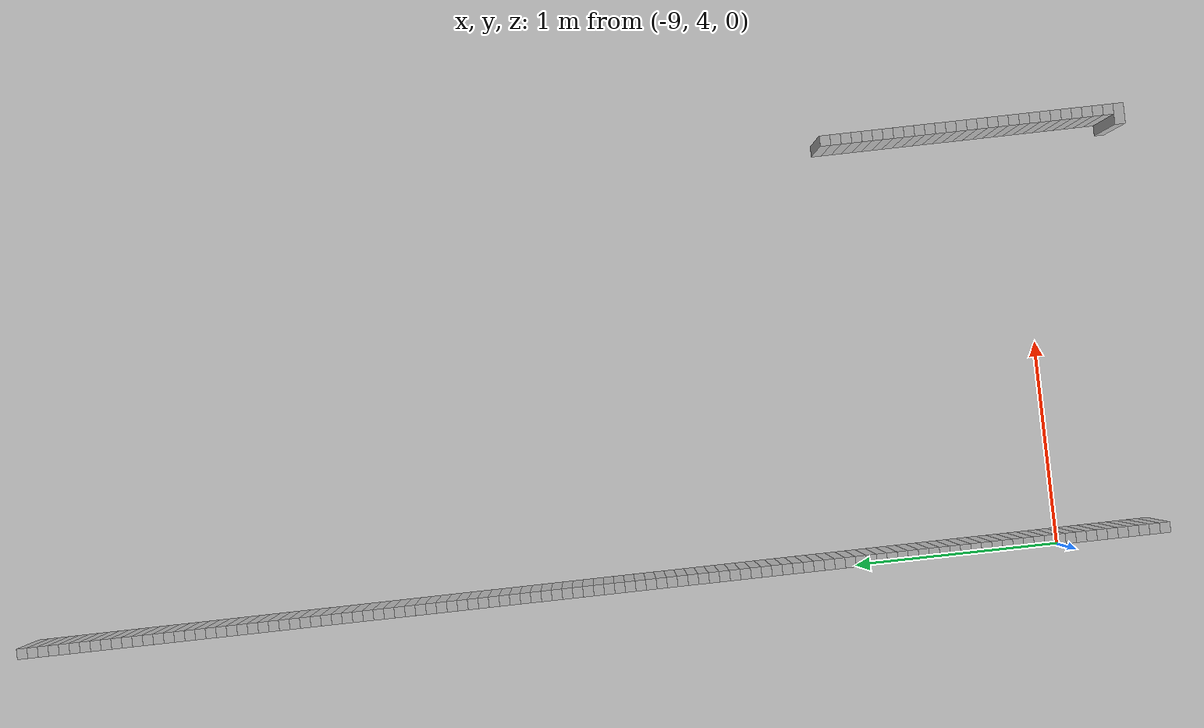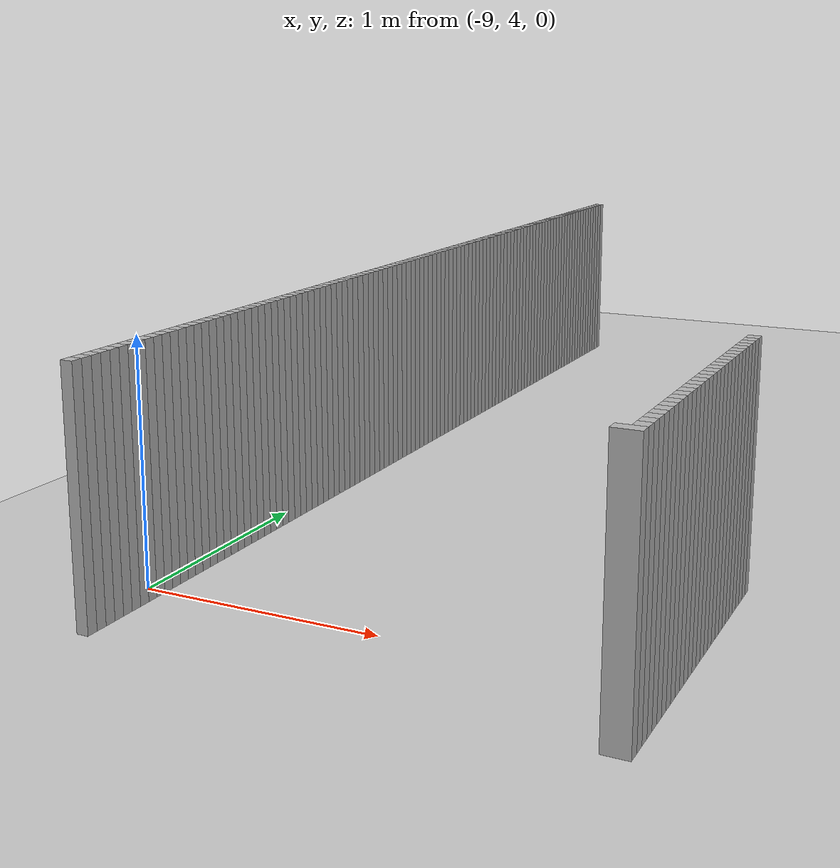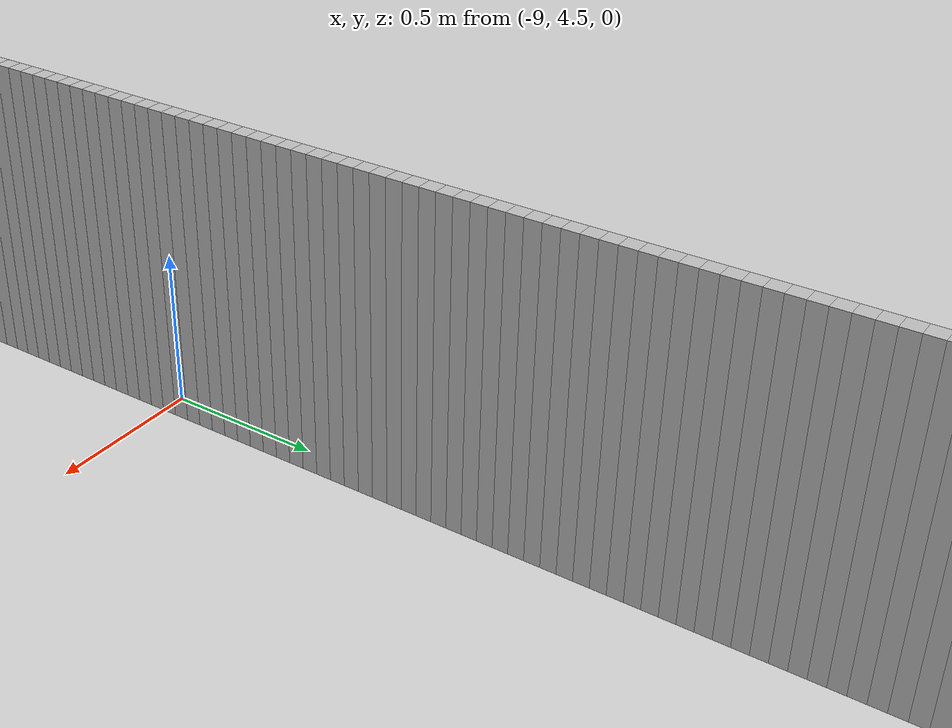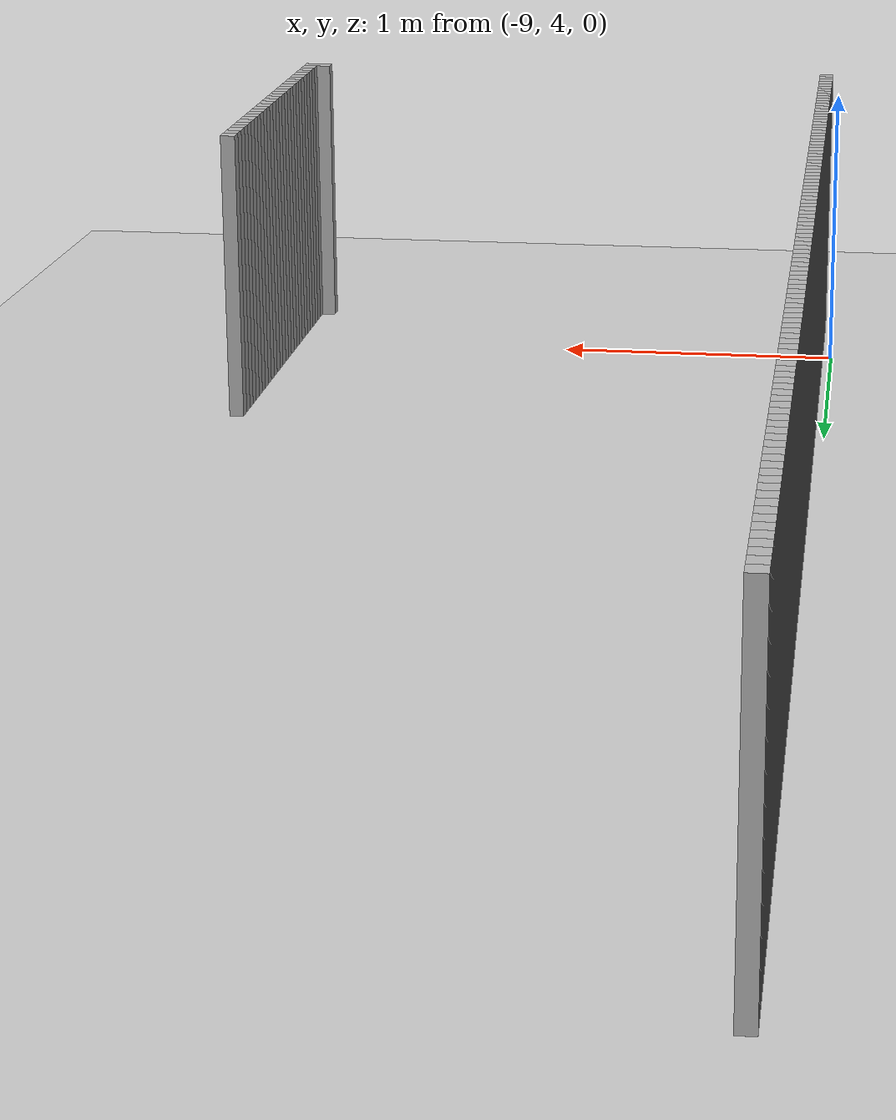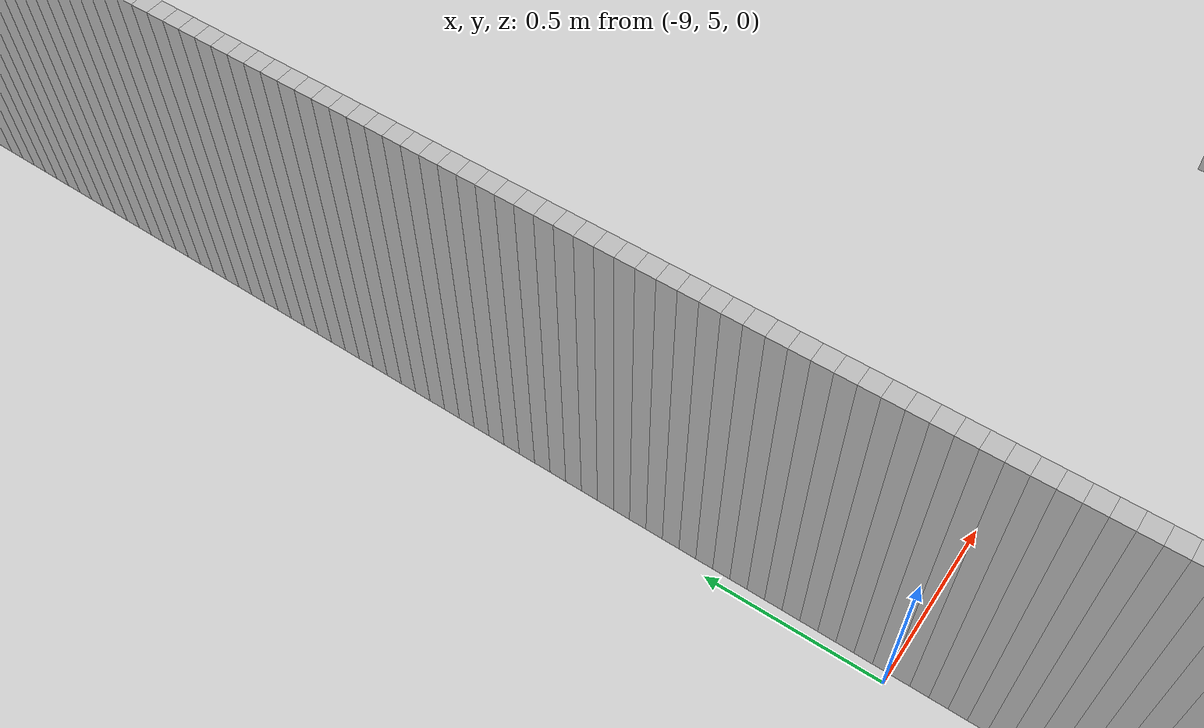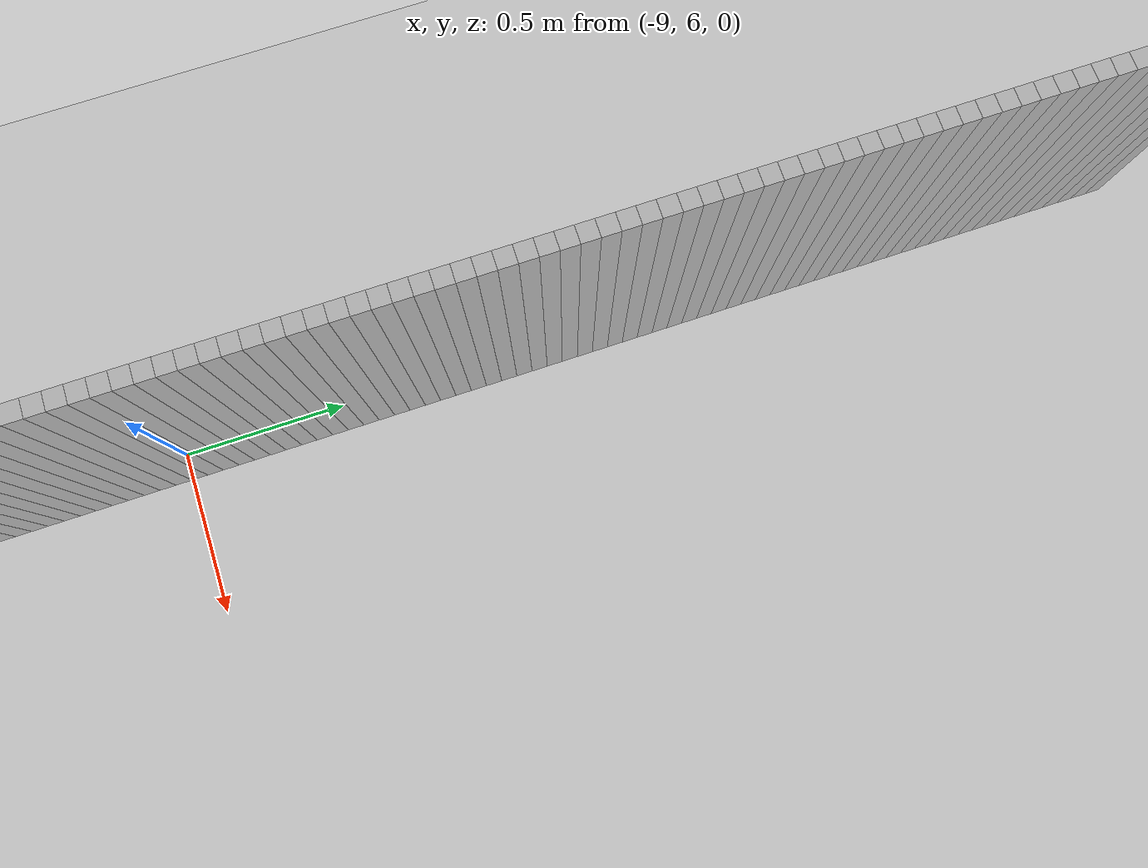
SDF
<sdf version="1.6">
 <world name="udh1_world">
  <include><uri>model://ground_plane</uri></include>
  <include><uri>model://sun</uri></include>
  <model name="wall_7">
   <static>true</static>
   <pose>-8.945 9.020000000000001 0.5 0 0 0</pose>
   <link name="link">
    <collision name="col"><geometry><box><size>0.05 0.05 1</size></box></geometry></collision>
    <visual name="vis"><geometry><box><size>0.05 0.05 1</size></box></geometry></visual>
   </link>
  </model>
  <model name="wall_42">
   <static>true</static>
   <pose>-8.945 8.97 0.5 0 0 0</pose>
   <link name="link">
    <collision name="col"><geometry><box><size>0.05 0.05 1</size></box></geometry></collision>
    <visual name="vis"><geometry><box><size>0.05 0.05 1</size></box></geometry></visual>
   </link>
  </model>
  <model name="wall_46">
   <static>true</static>
   <pose>-8.945 8.92 0.5 0 0 0</pose>
   <link name="link">
    <collision name="col"><geometry><box><size>0.05 0.05 1</size></box></geometry></collision>
    <visual name="vis"><geometry><box><size>0.05 0.05 1</size></box></geometry></visual>
   </link>
  </model>
  <model name="wall_50">
   <static>true</static>
   <pose>-8.945 8.87 0.5 0 0 0</pose>
   <link name="link">
    <collision name="col"><geometry><box><size>0.05 0.05 1</size></box></geometry></collision>
    <visual name="vis"><geometry><box><size>0.05 0.05 1</size></box></geometry></visual>
   </link>
  </model>
  <model name="wall_54">
   <static>true</static>
   <pose>-8.945 8.819999999999999 0.5 0 0 0</pose>
   <link name="link">
    <collision name="col"><geometry><box><size>0.05 0.05 1</size></box></geometry></collision>
    <visual name="vis"><geometry><box><size>0.05 0.05 1</size></box></geometry></visual>
   </link>
  </model>
  <model name="wall_58">
   <static>true</static>
   <pose>-8.945 8.770000000000001 0.5 0 0 0</pose>
   <link name="link">
    <collision name="col"><geometry><box><size>0.05 0.05 1</size></box></geometry></collision>
    <visual name="vis"><geometry><box><size>0.05 0.05 1</size></box></geometry></visual>
   </link>
  </model>
  <model name="wall_62">
   <static>true</static>
   <pose>-8.945 8.72 0.5 0 0 0</pose>
   <link name="link">
    <collision name="col"><geometry><box><size>0.05 0.05 1</size></box></geometry></collision>
    <visual name="vis"><geometry><box><size>0.05 0.05 1</size></box></geometry></visual>
   </link>
  </model>
  <model name="wall_66">
   <static>true</static>
   <pose>-8.945 8.67 0.5 0 0 0</pose>
   <link name="link">
    <collision name="col"><geometry><box><size>0.05 0.05 1</size></box></geometry></collision>
    <visual name="vis"><geometry><box><size>0.05 0.05 1</size></box></geometry></visual>
   </link>
  </model>
  <model name="wall_70">
   <static>true</static>
   <pose>-8.945 8.62 0.5 0 0 0</pose>
   <link name="link">
    <collision name="col"><geometry><box><size>0.05 0.05 1</size></box></geometry></collision>
    <visual name="vis"><geometry><box><size>0.05 0.05 1</size></box></geometry></visual>
   </link>
  </model>
  <model name="wall_74">
   <static>true</static>
   <pose>-8.945 8.569999999999999 0.5 0 0 0</pose>
   <link name="link">
    <collision name="col"><geometry><box><size>0.05 0.05 1</size></box></geometry></collision>
    <visual name="vis"><geometry><box><size>0.05 0.05 1</size></box></geometry></visual>
   </link>
  </model>
  <model name="wall_78">
   <static>true</static>
   <pose>-8.945 8.520000000000001 0.5 0 0 0</pose>
   <link name="link">
    <collision name="col"><geometry><box><size>0.05 0.05 1</size></box></geometry></collision>
    <visual name="vis"><geometry><box><size>0.05 0.05 1</size></box></geometry></visual>
   </link>
  </model>
  <model name="wall_82">
   <static>true</static>
   <pose>-8.945 8.47 0.5 0 0 0</pose>
   <link name="link">
    <collision name="col"><geometry><box><size>0.05 0.05 1</size></box></geometry></collision>
    <visual name="vis"><geometry><box><size>0.05 0.05 1</size></box></geometry></visual>
   </link>
  </model>
  <model name="wall_86">
   <static>true</static>
   <pose>-8.945 8.42 0.5 0 0 0</pose>
   <link name="link">
    <collision name="col"><geometry><box><size>0.05 0.05 1</size></box></geometry></collision>
    <visual name="vis"><geometry><box><size>0.05 0.05 1</size></box></geometry></visual>
   </link>
  </model>
  <model name="wall_90">
   <static>true</static>
   <pose>-8.945 8.37 0.5 0 0 0</pose>
   <link name="link">
    <collision name="col"><geometry><box><size>0.05 0.05 1</size></box></geometry></collision>
    <visual name="vis"><geometry><box><size>0.05 0.05 1</size></box></geometry></visual>
   </link>
  </model>
  <model name="wall_95">
   <static>true</static>
   <pose>-8.945 8.319999999999999 0.5 0 0 0</pose>
   <link name="link">
    <collision name="col"><geometry><box><size>0.05 0.05 1</size></box></geometry></collision>
    <visual name="vis"><geometry><box><size>0.05 0.05 1</size></box></geometry></visual>
   </link>
  </model>
  <model name="wall_99">
   <static>true</static>
   <pose>-8.945 8.270000000000001 0.5 0 0 0</pose>
   <link name="link">
    <collision name="col"><geometry><box><size>0.05 0.05 1</size></box></geometry></collision>
    <visual name="vis"><geometry><box><size>0.05 0.05 1</size></box></geometry></visual>
   </link>
  </model>
  <model name="wall_103">
   <static>true</static>
   <pose>-8.945 8.22 0.5 0 0 0</pose>
   <link name="link">
    <collision name="col"><geometry><box><size>0.05 0.05 1</size></box></geometry></collision>
    <visual name="vis"><geometry><box><size>0.05 0.05 1</size></box></geometry></visual>
   </link>
  </model>
  <model name="wall_107">
   <static>true</static>
   <pose>-8.945 8.17 0.5 0 0 0</pose>
   <link name="link">
    <collision name="col"><geometry><box><size>0.05 0.05 1</size></box></geometry></collision>
    <visual name="vis"><geometry><box><size>0.05 0.05 1</size></box></geometry></visual>
   </link>
  </model>
  <model name="wall_112">
   <static>true</static>
   <pose>-8.945 8.12 0.5 0 0 0</pose>
   <link name="link">
    <collision name="col"><geometry><box><size>0.05 0.05 1</size></box></geometry></collision>
    <visual name="vis"><geometry><box><size>0.05 0.05 1</size></box></geometry></visual>
   </link>
  </model>
  <model name="wall_116">
   <static>true</static>
   <pose>-8.945 8.069999999999999 0.5 0 0 0</pose>
   <link name="link">
    <collision name="col"><geometry><box><size>0.05 0.05 1</size></box></geometry></collision>
    <visual name="vis"><geometry><box><size>0.05 0.05 1</size></box></geometry></visual>
   </link>
  </model>
  <model name="wall_120">
   <static>true</static>
   <pose>-8.945 8.020000000000001 0.5 0 0 0</pose>
   <link name="link">
    <collision name="col"><geometry><box><size>0.05 0.05 1</size></box></geometry></collision>
    <visual name="vis"><geometry><box><size>0.05 0.05 1</size></box></geometry></visual>
   </link>
  </model>
  <model name="wall_124">
   <static>true</static>
   <pose>-8.945 7.970000000000001 0.5 0 0 0</pose>
   <link name="link">
    <collision name="col"><geometry><box><size>0.05 0.05 1</size></box></geometry></collision>
    <visual name="vis"><geometry><box><size>0.05 0.05 1</size></box></geometry></visual>
   </link>
  </model>
  <model name="wall_128">
   <static>true</static>
   <pose>-8.945 7.92 0.5 0 0 0</pose>
   <link name="link">
    <collision name="col"><geometry><box><size>0.05 0.05 1</size></box></geometry></collision>
    <visual name="vis"><geometry><box><size>0.05 0.05 1</size></box></geometry></visual>
   </link>
  </model>
  <model name="wall_132">
   <static>true</static>
   <pose>-8.945 7.869999999999999 0.5 0 0 0</pose>
   <link name="link">
    <collision name="col"><geometry><box><size>0.05 0.05 1</size></box></geometry></collision>
    <visual name="vis"><geometry><box><size>0.05 0.05 1</size></box></geometry></visual>
   </link>
  </model>
  <model name="wall_137">
   <static>true</static>
   <pose>-8.945 7.8199999999999985 0.5 0 0 0</pose>
   <link name="link">
    <collision name="col"><geometry><box><size>0.05 0.05 1</size></box></geometry></collision>
    <visual name="vis"><geometry><box><size>0.05 0.05 1</size></box></geometry></visual>
   </link>
  </model>
  <model name="wall_141">
   <static>true</static>
   <pose>-8.945 7.770000000000001 0.5 0 0 0</pose>
   <link name="link">
    <collision name="col"><geometry><box><size>0.05 0.05 1</size></box></geometry></collision>
    <visual name="vis"><geometry><box><size>0.05 0.05 1</size></box></geometry></visual>
   </link>
  </model>
  <model name="wall_145">
   <static>true</static>
   <pose>-8.945 7.720000000000001 0.5 0 0 0</pose>
   <link name="link">
    <collision name="col"><geometry><box><size>0.05 0.05 1</size></box></geometry></collision>
    <visual name="vis"><geometry><box><size>0.05 0.05 1</size></box></geometry></visual>
   </link>
  </model>
  <model name="wall_150">
   <static>true</static>
   <pose>-8.945 7.67 0.5 0 0 0</pose>
   <link name="link">
    <collision name="col"><geometry><box><size>0.05 0.05 1</size></box></geometry></collision>
    <visual name="vis"><geometry><box><size>0.05 0.05 1</size></box></geometry></visual>
   </link>
  </model>
  <model name="wall_154">
   <static>true</static>
   <pose>-8.945 7.619999999999999 0.5 0 0 0</pose>
   <link name="link">
    <collision name="col"><geometry><box><size>0.05 0.05 1</size></box></geometry></collision>
    <visual name="vis"><geometry><box><size>0.05 0.05 1</size></box></geometry></visual>
   </link>
  </model>
  <model name="wall_158">
   <static>true</static>
   <pose>-8.945 7.5699999999999985 0.5 0 0 0</pose>
   <link name="link">
    <collision name="col"><geometry><box><size>0.05 0.05 1</size></box></geometry></collision>
    <visual name="vis"><geometry><box><size>0.05 0.05 1</size></box></geometry></visual>
   </link>
  </model>
  <model name="wall_162">
   <static>true</static>
   <pose>-8.945 7.520000000000001 0.5 0 0 0</pose>
   <link name="link">
    <collision name="col"><geometry><box><size>0.05 0.05 1</size></box></geometry></collision>
    <visual name="vis"><geometry><box><size>0.05 0.05 1</size></box></geometry></visual>
   </link>
  </model>
  <model name="wall_166">
   <static>true</static>
   <pose>-8.945 7.470000000000001 0.5 0 0 0</pose>
   <link name="link">
    <collision name="col"><geometry><box><size>0.05 0.05 1</size></box></geometry></collision>
    <visual name="vis"><geometry><box><size>0.05 0.05 1</size></box></geometry></visual>
   </link>
  </model>
  <model name="wall_171">
   <static>true</static>
   <pose>-8.945 7.42 0.5 0 0 0</pose>
   <link name="link">
    <collision name="col"><geometry><box><size>0.05 0.05 1</size></box></geometry></collision>
    <visual name="vis"><geometry><box><size>0.05 0.05 1</size></box></geometry></visual>
   </link>
  </model>
  <model name="wall_175">
   <static>true</static>
   <pose>-8.945 7.369999999999999 0.5 0 0 0</pose>
   <link name="link">
    <collision name="col"><geometry><box><size>0.05 0.05 1</size></box></geometry></collision>
    <visual name="vis"><geometry><box><size>0.05 0.05 1</size></box></geometry></visual>
   </link>
  </model>
  <model name="wall_179">
   <static>true</static>
   <pose>-8.945 7.3199999999999985 0.5 0 0 0</pose>
   <link name="link">
    <collision name="col"><geometry><box><size>0.05 0.05 1</size></box></geometry></collision>
    <visual name="vis"><geometry><box><size>0.05 0.05 1</size></box></geometry></visual>
   </link>
  </model>
  <model name="wall_183">
   <static>true</static>
   <pose>-8.945 7.270000000000001 0.5 0 0 0</pose>
   <link name="link">
    <collision name="col"><geometry><box><size>0.05 0.05 1</size></box></geometry></collision>
    <visual name="vis"><geometry><box><size>0.05 0.05 1</size></box></geometry></visual>
   </link>
  </model>
  <model name="wall_187">
   <static>true</static>
   <pose>-8.945 7.220000000000001 0.5 0 0 0</pose>
   <link name="link">
    <collision name="col"><geometry><box><size>0.05 0.05 1</size></box></geometry></collision>
    <visual name="vis"><geometry><box><size>0.05 0.05 1</size></box></geometry></visual>
   </link>
  </model>
  <model name="wall_191">
   <static>true</static>
   <pose>-8.945 7.17 0.5 0 0 0</pose>
   <link name="link">
    <collision name="col"><geometry><box><size>0.05 0.05 1</size></box></geometry></collision>
    <visual name="vis"><geometry><box><size>0.05 0.05 1</size></box></geometry></visual>
   </link>
  </model>
  <model name="wall_195">
   <static>true</static>
   <pose>-8.945 7.119999999999999 0.5 0 0 0</pose>
   <link name="link">
    <collision name="col"><geometry><box><size>0.05 0.05 1</size></box></geometry></collision>
    <visual name="vis"><geometry><box><size>0.05 0.05 1</size></box></geometry></visual>
   </link>
  </model>
  <model name="wall_200">
   <static>true</static>
   <pose>-8.945 7.0699999999999985 0.5 0 0 0</pose>
   <link name="link">
    <collision name="col"><geometry><box><size>0.05 0.05 1</size></box></geometry></collision>
    <visual name="vis"><geometry><box><size>0.05 0.05 1</size></box></geometry></visual>
   </link>
  </model>
  <model name="wall_207">
   <static>true</static>
   <pose>-8.945 7.020000000000001 0.5 0 0 0</pose>
   <link name="link">
    <collision name="col"><geometry><box><size>0.05 0.05 1</size></box></geometry></collision>
    <visual name="vis"><geometry><box><size>0.05 0.05 1</size></box></geometry></visual>
   </link>
  </model>
  <model name="wall_215">
   <static>true</static>
   <pose>-8.945 6.970000000000001 0.5 0 0 0</pose>
   <link name="link">
    <collision name="col"><geometry><box><size>0.05 0.05 1</size></box></geometry></collision>
    <visual name="vis"><geometry><box><size>0.05 0.05 1</size></box></geometry></visual>
   </link>
  </model>
  <model name="wall_224">
   <static>true</static>
   <pose>-8.945 6.92 0.5 0 0 0</pose>
   <link name="link">
    <collision name="col"><geometry><box><size>0.05 0.05 1</size></box></geometry></collision>
    <visual name="vis"><geometry><box><size>0.05 0.05 1</size></box></geometry></visual>
   </link>
  </model>
  <model name="wall_232">
   <static>true</static>
   <pose>-8.945 6.869999999999999 0.5 0 0 0</pose>
   <link name="link">
    <collision name="col"><geometry><box><size>0.05 0.05 1</size></box></geometry></collision>
    <visual name="vis"><geometry><box><size>0.05 0.05 1</size></box></geometry></visual>
   </link>
  </model>
  <model name="wall_240">
   <static>true</static>
   <pose>-8.945 6.82 0.5 0 0 0</pose>
   <link name="link">
    <collision name="col"><geometry><box><size>0.05 0.05 1</size></box></geometry></collision>
    <visual name="vis"><geometry><box><size>0.05 0.05 1</size></box></geometry></visual>
   </link>
  </model>
  <model name="wall_248">
   <static>true</static>
   <pose>-8.945 6.77 0.5 0 0 0</pose>
   <link name="link">
    <collision name="col"><geometry><box><size>0.05 0.05 1</size></box></geometry></collision>
    <visual name="vis"><geometry><box><size>0.05 0.05 1</size></box></geometry></visual>
   </link>
  </model>
  <model name="wall_256">
   <static>true</static>
   <pose>-8.945 6.720000000000001 0.5 0 0 0</pose>
   <link name="link">
    <collision name="col"><geometry><box><size>0.05 0.05 1</size></box></geometry></collision>
    <visual name="vis"><geometry><box><size>0.05 0.05 1</size></box></geometry></visual>
   </link>
  </model>
  <model name="wall_264">
   <static>true</static>
   <pose>-8.945 6.67 0.5 0 0 0</pose>
   <link name="link">
    <collision name="col"><geometry><box><size>0.05 0.05 1</size></box></geometry></collision>
    <visual name="vis"><geometry><box><size>0.05 0.05 1</size></box></geometry></visual>
   </link>
  </model>
  <model name="wall_272">
   <static>true</static>
   <pose>-8.945 6.619999999999999 0.5 0 0 0</pose>
   <link name="link">
    <collision name="col"><geometry><box><size>0.05 0.05 1</size></box></geometry></collision>
    <visual name="vis"><geometry><box><size>0.05 0.05 1</size></box></geometry></visual>
   </link>
  </model>
  <model name="wall_285">
   <static>true</static>
   <pose>-8.945 6.57 0.5 0 0 0</pose>
   <link name="link">
    <collision name="col"><geometry><box><size>0.05 0.05 1</size></box></geometry></collision>
    <visual name="vis"><geometry><box><size>0.05 0.05 1</size></box></geometry></visual>
   </link>
  </model>
  <model name="wall_293">
   <static>true</static>
   <pose>-8.945 6.52 0.5 0 0 0</pose>
   <link name="link">
    <collision name="col"><geometry><box><size>0.05 0.05 1</size></box></geometry></collision>
    <visual name="vis"><geometry><box><size>0.05 0.05 1</size></box></geometry></visual>
   </link>
  </model>
  <model name="wall_299">
   <static>true</static>
   <pose>-8.945 6.470000000000001 0.5 0 0 0</pose>
   <link name="link">
    <collision name="col"><geometry><box><size>0.05 0.05 1</size></box></geometry></collision>
    <visual name="vis"><geometry><box><size>0.05 0.05 1</size></box></geometry></visual>
   </link>
  </model>
  <model name="wall_305">
   <static>true</static>
   <pose>-8.945 6.42 0.5 0 0 0</pose>
   <link name="link">
    <collision name="col"><geometry><box><size>0.05 0.05 1</size></box></geometry></collision>
    <visual name="vis"><geometry><box><size>0.05 0.05 1</size></box></geometry></visual>
   </link>
  </model>
  <model name="wall_311">
   <static>true</static>
   <pose>-8.945 6.369999999999999 0.5 0 0 0</pose>
   <link name="link">
    <collision name="col"><geometry><box><size>0.05 0.05 1</size></box></geometry></collision>
    <visual name="vis"><geometry><box><size>0.05 0.05 1</size></box></geometry></visual>
   </link>
  </model>
  <model name="wall_317">
   <static>true</static>
   <pose>-8.945 6.32 0.5 0 0 0</pose>
   <link name="link">
    <collision name="col"><geometry><box><size>0.05 0.05 1</size></box></geometry></collision>
    <visual name="vis"><geometry><box><size>0.05 0.05 1</size></box></geometry></visual>
   </link>
  </model>
  <model name="wall_323">
   <static>true</static>
   <pose>-8.945 6.27 0.5 0 0 0</pose>
   <link name="link">
    <collision name="col"><geometry><box><size>0.05 0.05 1</size></box></geometry></collision>
    <visual name="vis"><geometry><box><size>0.05 0.05 1</size></box></geometry></visual>
   </link>
  </model>
  <model name="wall_329">
   <static>true</static>
   <pose>-8.945 6.220000000000001 0.5 0 0 0</pose>
   <link name="link">
    <collision name="col"><geometry><box><size>0.05 0.05 1</size></box></geometry></collision>
    <visual name="vis"><geometry><box><size>0.05 0.05 1</size></box></geometry></visual>
   </link>
  </model>
  <model name="wall_335">
   <static>true</static>
   <pose>-8.945 6.17 0.5 0 0 0</pose>
   <link name="link">
    <collision name="col"><geometry><box><size>0.05 0.05 1</size></box></geometry></collision>
    <visual name="vis"><geometry><box><size>0.05 0.05 1</size></box></geometry></visual>
   </link>
  </model>
  <model name="wall_341">
   <static>true</static>
   <pose>-8.945 6.119999999999999 0.5 0 0 0</pose>
   <link name="link">
    <collision name="col"><geometry><box><size>0.05 0.05 1</size></box></geometry></collision>
    <visual name="vis"><geometry><box><size>0.05 0.05 1</size></box></geometry></visual>
   </link>
  </model>
  <model name="wall_355">
   <static>true</static>
   <pose>-8.945 6.07 0.5 0 0 0</pose>
   <link name="link">
    <collision name="col"><geometry><box><size>0.05 0.05 1</size></box></geometry></collision>
    <visual name="vis"><geometry><box><size>0.05 0.05 1</size></box></geometry></visual>
   </link>
  </model>
  <model name="wall_361">
   <static>true</static>
   <pose>-8.945 6.02 0.5 0 0 0</pose>
   <link name="link">
    <collision name="col"><geometry><box><size>0.05 0.05 1</size></box></geometry></collision>
    <visual name="vis"><geometry><box><size>0.05 0.05 1</size></box></geometry></visual>
   </link>
  </model>
  <model name="wall_367">
   <static>true</static>
   <pose>-8.945 5.970000000000001 0.5 0 0 0</pose>
   <link name="link">
    <collision name="col"><geometry><box><size>0.05 0.05 1</size></box></geometry></collision>
    <visual name="vis"><geometry><box><size>0.05 0.05 1</size></box></geometry></visual>
   </link>
  </model>
  <model name="wall_373">
   <static>true</static>
   <pose>-8.945 5.92 0.5 0 0 0</pose>
   <link name="link">
    <collision name="col"><geometry><box><size>0.05 0.05 1</size></box></geometry></collision>
    <visual name="vis"><geometry><box><size>0.05 0.05 1</size></box></geometry></visual>
   </link>
  </model>
  <model name="wall_379">
   <static>true</static>
   <pose>-8.945 5.869999999999999 0.5 0 0 0</pose>
   <link name="link">
    <collision name="col"><geometry><box><size>0.05 0.05 1</size></box></geometry></collision>
    <visual name="vis"><geometry><box><size>0.05 0.05 1</size></box></geometry></visual>
   </link>
  </model>
  <model name="wall_385">
   <static>true</static>
   <pose>-8.945 5.82 0.5 0 0 0</pose>
   <link name="link">
    <collision name="col"><geometry><box><size>0.05 0.05 1</size></box></geometry></collision>
    <visual name="vis"><geometry><box><size>0.05 0.05 1</size></box></geometry></visual>
   </link>
  </model>
  <model name="wall_391">
   <static>true</static>
   <pose>-8.945 5.77 0.5 0 0 0</pose>
   <link name="link">
    <collision name="col"><geometry><box><size>0.05 0.05 1</size></box></geometry></collision>
    <visual name="vis"><geometry><box><size>0.05 0.05 1</size></box></geometry></visual>
   </link>
  </model>
  <model name="wall_397">
   <static>true</static>
   <pose>-8.945 5.720000000000001 0.5 0 0 0</pose>
   <link name="link">
    <collision name="col"><geometry><box><size>0.05 0.05 1</size></box></geometry></collision>
    <visual name="vis"><geometry><box><size>0.05 0.05 1</size></box></geometry></visual>
   </link>
  </model>
  <model name="wall_403">
   <static>true</static>
   <pose>-8.945 5.67 0.5 0 0 0</pose>
   <link name="link">
    <collision name="col"><geometry><box><size>0.05 0.05 1</size></box></geometry></collision>
    <visual name="vis"><geometry><box><size>0.05 0.05 1</size></box></geometry></visual>
   </link>
  </model>
  <model name="wall_409">
   <static>true</static>
   <pose>-8.945 5.619999999999999 0.5 0 0 0</pose>
   <link name="link">
    <collision name="col"><geometry><box><size>0.05 0.05 1</size></box></geometry></collision>
    <visual name="vis"><geometry><box><size>0.05 0.05 1</size></box></geometry></visual>
   </link>
  </model>
  <model name="wall_415">
   <static>true</static>
   <pose>-8.945 5.57 0.5 0 0 0</pose>
   <link name="link">
    <collision name="col"><geometry><box><size>0.05 0.05 1</size></box></geometry></collision>
    <visual name="vis"><geometry><box><size>0.05 0.05 1</size></box></geometry></visual>
   </link>
  </model>
  <model name="wall_422">
   <static>true</static>
   <pose>-8.945 5.52 0.5 0 0 0</pose>
   <link name="link">
    <collision name="col"><geometry><box><size>0.05 0.05 1</size></box></geometry></collision>
    <visual name="vis"><geometry><box><size>0.05 0.05 1</size></box></geometry></visual>
   </link>
  </model>
  <model name="wall_431">
   <static>true</static>
   <pose>-8.945 5.470000000000001 0.5 0 0 0</pose>
   <link name="link">
    <collision name="col"><geometry><box><size>0.05 0.05 1</size></box></geometry></collision>
    <visual name="vis"><geometry><box><size>0.05 0.05 1</size></box></geometry></visual>
   </link>
  </model>
  <model name="wall_440">
   <static>true</static>
   <pose>-8.945 5.42 0.5 0 0 0</pose>
   <link name="link">
    <collision name="col"><geometry><box><size>0.05 0.05 1</size></box></geometry></collision>
    <visual name="vis"><geometry><box><size>0.05 0.05 1</size></box></geometry></visual>
   </link>
  </model>
  <model name="wall_449">
   <static>true</static>
   <pose>-8.945 5.369999999999999 0.5 0 0 0</pose>
   <link name="link">
    <collision name="col"><geometry><box><size>0.05 0.05 1</size></box></geometry></collision>
    <visual name="vis"><geometry><box><size>0.05 0.05 1</size></box></geometry></visual>
   </link>
  </model>
  <model name="wall_458">
   <static>true</static>
   <pose>-8.945 5.32 0.5 0 0 0</pose>
   <link name="link">
    <collision name="col"><geometry><box><size>0.05 0.05 1</size></box></geometry></collision>
    <visual name="vis"><geometry><box><size>0.05 0.05 1</size></box></geometry></visual>
   </link>
  </model>
  <model name="wall_467">
   <static>true</static>
   <pose>-8.945 5.27 0.5 0 0 0</pose>
   <link name="link">
    <collision name="col"><geometry><box><size>0.05 0.05 1</size></box></geometry></collision>
    <visual name="vis"><geometry><box><size>0.05 0.05 1</size></box></geometry></visual>
   </link>
  </model>
  <model name="wall_476">
   <static>true</static>
   <pose>-8.945 5.220000000000001 0.5 0 0 0</pose>
   <link name="link">
    <collision name="col"><geometry><box><size>0.05 0.05 1</size></box></geometry></collision>
    <visual name="vis"><geometry><box><size>0.05 0.05 1</size></box></geometry></visual>
   </link>
  </model>
  <model name="wall_485">
   <static>true</static>
   <pose>-8.945 5.17 0.5 0 0 0</pose>
   <link name="link">
    <collision name="col"><geometry><box><size>0.05 0.05 1</size></box></geometry></collision>
    <visual name="vis"><geometry><box><size>0.05 0.05 1</size></box></geometry></visual>
   </link>
  </model>
  <model name="wall_494">
   <static>true</static>
   <pose>-8.945 5.119999999999999 0.5 0 0 0</pose>
   <link name="link">
    <collision name="col"><geometry><box><size>0.05 0.05 1</size></box></geometry></collision>
    <visual name="vis"><geometry><box><size>0.05 0.05 1</size></box></geometry></visual>
   </link>
  </model>
  <model name="wall_503">
   <static>true</static>
   <pose>-8.945 5.07 0.5 0 0 0</pose>
   <link name="link">
    <collision name="col"><geometry><box><size>0.05 0.05 1</size></box></geometry></collision>
    <visual name="vis"><geometry><box><size>0.05 0.05 1</size></box></geometry></visual>
   </link>
  </model>
  <model name="wall_512">
   <static>true</static>
   <pose>-8.945 5.02 0.5 0 0 0</pose>
   <link name="link">
    <collision name="col"><geometry><box><size>0.05 0.05 1</size></box></geometry></collision>
    <visual name="vis"><geometry><box><size>0.05 0.05 1</size></box></geometry></visual>
   </link>
  </model>
  <model name="wall_521">
   <static>true</static>
   <pose>-8.945 4.970000000000001 0.5 0 0 0</pose>
   <link name="link">
    <collision name="col"><geometry><box><size>0.05 0.05 1</size></box></geometry></collision>
    <visual name="vis"><geometry><box><size>0.05 0.05 1</size></box></geometry></visual>
   </link>
  </model>
  <model name="wall_522">
   <static>true</static>
   <pose>-6.944999999999999 4.970000000000001 0.5 0 0 0</pose>
   <link name="link">
    <collision name="col"><geometry><box><size>0.05 0.05 1</size></box></geometry></collision>
    <visual name="vis"><geometry><box><size>0.05 0.05 1</size></box></geometry></visual>
   </link>
  </model>
  <model name="wall_530">
   <static>true</static>
   <pose>-8.945 4.92 0.5 0 0 0</pose>
   <link name="link">
    <collision name="col"><geometry><box><size>0.05 0.05 1</size></box></geometry></collision>
    <visual name="vis"><geometry><box><size>0.05 0.05 1</size></box></geometry></visual>
   </link>
  </model>
  <model name="wall_531">
   <static>true</static>
   <pose>-6.944999999999999 4.92 0.5 0 0 0</pose>
   <link name="link">
    <collision name="col"><geometry><box><size>0.05 0.05 1</size></box></geometry></collision>
    <visual name="vis"><geometry><box><size>0.05 0.05 1</size></box></geometry></visual>
   </link>
  </model>
  <model name="wall_539">
   <static>true</static>
   <pose>-8.945 4.869999999999999 0.5 0 0 0</pose>
   <link name="link">
    <collision name="col"><geometry><box><size>0.05 0.05 1</size></box></geometry></collision>
    <visual name="vis"><geometry><box><size>0.05 0.05 1</size></box></geometry></visual>
   </link>
  </model>
  <model name="wall_540">
   <static>true</static>
   <pose>-6.944999999999999 4.869999999999999 0.5 0 0 0</pose>
   <link name="link">
    <collision name="col"><geometry><box><size>0.05 0.05 1</size></box></geometry></collision>
    <visual name="vis"><geometry><box><size>0.05 0.05 1</size></box></geometry></visual>
   </link>
  </model>
  <model name="wall_548">
   <static>true</static>
   <pose>-8.945 4.82 0.5 0 0 0</pose>
   <link name="link">
    <collision name="col"><geometry><box><size>0.05 0.05 1</size></box></geometry></collision>
    <visual name="vis"><geometry><box><size>0.05 0.05 1</size></box></geometry></visual>
   </link>
  </model>
  <model name="wall_549">
   <static>true</static>
   <pose>-6.944999999999999 4.82 0.5 0 0 0</pose>
   <link name="link">
    <collision name="col"><geometry><box><size>0.05 0.05 1</size></box></geometry></collision>
    <visual name="vis"><geometry><box><size>0.05 0.05 1</size></box></geometry></visual>
   </link>
  </model>
  <model name="wall_556">
   <static>true</static>
   <pose>-8.945 4.77 0.5 0 0 0</pose>
   <link name="link">
    <collision name="col"><geometry><box><size>0.05 0.05 1</size></box></geometry></collision>
    <visual name="vis"><geometry><box><size>0.05 0.05 1</size></box></geometry></visual>
   </link>
  </model>
  <model name="wall_557">
   <static>true</static>
   <pose>-6.944999999999999 4.77 0.5 0 0 0</pose>
   <link name="link">
    <collision name="col"><geometry><box><size>0.05 0.05 1</size></box></geometry></collision>
    <visual name="vis"><geometry><box><size>0.05 0.05 1</size></box></geometry></visual>
   </link>
  </model>
  <model name="wall_565">
   <static>true</static>
   <pose>-8.945 4.720000000000001 0.5 0 0 0</pose>
   <link name="link">
    <collision name="col"><geometry><box><size>0.05 0.05 1</size></box></geometry></collision>
    <visual name="vis"><geometry><box><size>0.05 0.05 1</size></box></geometry></visual>
   </link>
  </model>
  <model name="wall_566">
   <static>true</static>
   <pose>-6.944999999999999 4.720000000000001 0.5 0 0 0</pose>
   <link name="link">
    <collision name="col"><geometry><box><size>0.05 0.05 1</size></box></geometry></collision>
    <visual name="vis"><geometry><box><size>0.05 0.05 1</size></box></geometry></visual>
   </link>
  </model>
  <model name="wall_574">
   <static>true</static>
   <pose>-8.945 4.67 0.5 0 0 0</pose>
   <link name="link">
    <collision name="col"><geometry><box><size>0.05 0.05 1</size></box></geometry></collision>
    <visual name="vis"><geometry><box><size>0.05 0.05 1</size></box></geometry></visual>
   </link>
  </model>
  <model name="wall_575">
   <static>true</static>
   <pose>-6.944999999999999 4.67 0.5 0 0 0</pose>
   <link name="link">
    <collision name="col"><geometry><box><size>0.05 0.05 1</size></box></geometry></collision>
    <visual name="vis"><geometry><box><size>0.05 0.05 1</size></box></geometry></visual>
   </link>
  </model>
  <model name="wall_584">
   <static>true</static>
   <pose>-8.945 4.619999999999999 0.5 0 0 0</pose>
   <link name="link">
    <collision name="col"><geometry><box><size>0.05 0.05 1</size></box></geometry></collision>
    <visual name="vis"><geometry><box><size>0.05 0.05 1</size></box></geometry></visual>
   </link>
  </model>
  <model name="wall_585">
   <static>true</static>
   <pose>-6.944999999999999 4.619999999999999 0.5 0 0 0</pose>
   <link name="link">
    <collision name="col"><geometry><box><size>0.05 0.05 1</size></box></geometry></collision>
    <visual name="vis"><geometry><box><size>0.05 0.05 1</size></box></geometry></visual>
   </link>
  </model>
  <model name="wall_597">
   <static>true</static>
   <pose>-8.945 4.57 0.5 0 0 0</pose>
   <link name="link">
    <collision name="col"><geometry><box><size>0.05 0.05 1</size></box></geometry></collision>
    <visual name="vis"><geometry><box><size>0.05 0.05 1</size></box></geometry></visual>
   </link>
  </model>
  <model name="wall_598">
   <static>true</static>
   <pose>-6.944999999999999 4.57 0.5 0 0 0</pose>
   <link name="link">
    <collision name="col"><geometry><box><size>0.05 0.05 1</size></box></geometry></collision>
    <visual name="vis"><geometry><box><size>0.05 0.05 1</size></box></geometry></visual>
   </link>
  </model>
  <model name="wall_610">
   <static>true</static>
   <pose>-8.945 4.52 0.5 0 0 0</pose>
   <link name="link">
    <collision name="col"><geometry><box><size>0.05 0.05 1</size></box></geometry></collision>
    <visual name="vis"><geometry><box><size>0.05 0.05 1</size></box></geometry></visual>
   </link>
  </model>
  <model name="wall_611">
   <static>true</static>
   <pose>-6.944999999999999 4.52 0.5 0 0 0</pose>
   <link name="link">
    <collision name="col"><geometry><box><size>0.05 0.05 1</size></box></geometry></collision>
    <visual name="vis"><geometry><box><size>0.05 0.05 1</size></box></geometry></visual>
   </link>
  </model>
  <model name="wall_620">
   <static>true</static>
   <pose>-8.945 4.470000000000001 0.5 0 0 0</pose>
   <link name="link">
    <collision name="col"><geometry><box><size>0.05 0.05 1</size></box></geometry></collision>
    <visual name="vis"><geometry><box><size>0.05 0.05 1</size></box></geometry></visual>
   </link>
  </model>
  <model name="wall_621">
   <static>true</static>
   <pose>-6.944999999999999 4.470000000000001 0.5 0 0 0</pose>
   <link name="link">
    <collision name="col"><geometry><box><size>0.05 0.05 1</size></box></geometry></collision>
    <visual name="vis"><geometry><box><size>0.05 0.05 1</size></box></geometry></visual>
   </link>
  </model>
  <model name="wall_630">
   <static>true</static>
   <pose>-8.945 4.42 0.5 0 0 0</pose>
   <link name="link">
    <collision name="col"><geometry><box><size>0.05 0.05 1</size></box></geometry></collision>
    <visual name="vis"><geometry><box><size>0.05 0.05 1</size></box></geometry></visual>
   </link>
  </model>
  <model name="wall_631">
   <static>true</static>
   <pose>-6.944999999999999 4.42 0.5 0 0 0</pose>
   <link name="link">
    <collision name="col"><geometry><box><size>0.05 0.05 1</size></box></geometry></collision>
    <visual name="vis"><geometry><box><size>0.05 0.05 1</size></box></geometry></visual>
   </link>
  </model>
  <model name="wall_639">
   <static>true</static>
   <pose>-8.945 4.369999999999999 0.5 0 0 0</pose>
   <link name="link">
    <collision name="col"><geometry><box><size>0.05 0.05 1</size></box></geometry></collision>
    <visual name="vis"><geometry><box><size>0.05 0.05 1</size></box></geometry></visual>
   </link>
  </model>
  <model name="wall_640">
   <static>true</static>
   <pose>-6.944999999999999 4.369999999999999 0.5 0 0 0</pose>
   <link name="link">
    <collision name="col"><geometry><box><size>0.05 0.05 1</size></box></geometry></collision>
    <visual name="vis"><geometry><box><size>0.05 0.05 1</size></box></geometry></visual>
   </link>
  </model>
  <model name="wall_649">
   <static>true</static>
   <pose>-8.945 4.32 0.5 0 0 0</pose>
   <link name="link">
    <collision name="col"><geometry><box><size>0.05 0.05 1</size></box></geometry></collision>
    <visual name="vis"><geometry><box><size>0.05 0.05 1</size></box></geometry></visual>
   </link>
  </model>
  <model name="wall_650">
   <static>true</static>
   <pose>-6.944999999999999 4.32 0.5 0 0 0</pose>
   <link name="link">
    <collision name="col"><geometry><box><size>0.05 0.05 1</size></box></geometry></collision>
    <visual name="vis"><geometry><box><size>0.05 0.05 1</size></box></geometry></visual>
   </link>
  </model>
  <model name="wall_659">
   <static>true</static>
   <pose>-8.945 4.27 0.5 0 0 0</pose>
   <link name="link">
    <collision name="col"><geometry><box><size>0.05 0.05 1</size></box></geometry></collision>
    <visual name="vis"><geometry><box><size>0.05 0.05 1</size></box></geometry></visual>
   </link>
  </model>
  <model name="wall_660">
   <static>true</static>
   <pose>-6.944999999999999 4.27 0.5 0 0 0</pose>
   <link name="link">
    <collision name="col"><geometry><box><size>0.05 0.05 1</size></box></geometry></collision>
    <visual name="vis"><geometry><box><size>0.05 0.05 1</size></box></geometry></visual>
   </link>
  </model>
  <model name="wall_668">
   <static>true</static>
   <pose>-8.945 4.220000000000001 0.5 0 0 0</pose>
   <link name="link">
    <collision name="col"><geometry><box><size>0.05 0.05 1</size></box></geometry></collision>
    <visual name="vis"><geometry><box><size>0.05 0.05 1</size></box></geometry></visual>
   </link>
  </model>
  <model name="wall_669">
   <static>true</static>
   <pose>-6.944999999999999 4.220000000000001 0.5 0 0 0</pose>
   <link name="link">
    <collision name="col"><geometry><box><size>0.05 0.05 1</size></box></geometry></collision>
    <visual name="vis"><geometry><box><size>0.05 0.05 1</size></box></geometry></visual>
   </link>
  </model>
  <model name="wall_678">
   <static>true</static>
   <pose>-8.945 4.17 0.5 0 0 0</pose>
   <link name="link">
    <collision name="col"><geometry><box><size>0.05 0.05 1</size></box></geometry></collision>
    <visual name="vis"><geometry><box><size>0.05 0.05 1</size></box></geometry></visual>
   </link>
  </model>
  <model name="wall_679">
   <static>true</static>
   <pose>-6.944999999999999 4.17 0.5 0 0 0</pose>
   <link name="link">
    <collision name="col"><geometry><box><size>0.05 0.05 1</size></box></geometry></collision>
    <visual name="vis"><geometry><box><size>0.05 0.05 1</size></box></geometry></visual>
   </link>
  </model>
  <model name="wall_687">
   <static>true</static>
   <pose>-8.945 4.119999999999999 0.5 0 0 0</pose>
   <link name="link">
    <collision name="col"><geometry><box><size>0.05 0.05 1</size></box></geometry></collision>
    <visual name="vis"><geometry><box><size>0.05 0.05 1</size></box></geometry></visual>
   </link>
  </model>
  <model name="wall_688">
   <static>true</static>
   <pose>-6.944999999999999 4.119999999999999 0.5 0 0 0</pose>
   <link name="link">
    <collision name="col"><geometry><box><size>0.05 0.05 1</size></box></geometry></collision>
    <visual name="vis"><geometry><box><size>0.05 0.05 1</size></box></geometry></visual>
   </link>
  </model>
  <model name="wall_697">
   <static>true</static>
   <pose>-8.945 4.07 0.5 0 0 0</pose>
   <link name="link">
    <collision name="col"><geometry><box><size>0.05 0.05 1</size></box></geometry></collision>
    <visual name="vis"><geometry><box><size>0.05 0.05 1</size></box></geometry></visual>
   </link>
  </model>
  <model name="wall_698">
   <static>true</static>
   <pose>-6.944999999999999 4.07 0.5 0 0 0</pose>
   <link name="link">
    <collision name="col"><geometry><box><size>0.05 0.05 1</size></box></geometry></collision>
    <visual name="vis"><geometry><box><size>0.05 0.05 1</size></box></geometry></visual>
   </link>
  </model>
  <model name="wall_707">
   <static>true</static>
   <pose>-8.945 4.02 0.5 0 0 0</pose>
   <link name="link">
    <collision name="col"><geometry><box><size>0.05 0.05 1</size></box></geometry></collision>
    <visual name="vis"><geometry><box><size>0.05 0.05 1</size></box></geometry></visual>
   </link>
  </model>
  <model name="wall_708">
   <static>true</static>
   <pose>-6.944999999999999 4.02 0.5 0 0 0</pose>
   <link name="link">
    <collision name="col"><geometry><box><size>0.05 0.05 1</size></box></geometry></collision>
    <visual name="vis"><geometry><box><size>0.05 0.05 1</size></box></geometry></visual>
   </link>
  </model>
  <model name="wall_717">
   <static>true</static>
   <pose>-8.945 3.9700000000000006 0.5 0 0 0</pose>
   <link name="link">
    <collision name="col"><geometry><box><size>0.05 0.05 1</size></box></geometry></collision>
    <visual name="vis"><geometry><box><size>0.05 0.05 1</size></box></geometry></visual>
   </link>
  </model>
  <model name="wall_718">
   <static>true</static>
   <pose>-6.944999999999999 3.9700000000000006 0.5 0 0 0</pose>
   <link name="link">
    <collision name="col"><geometry><box><size>0.05 0.05 1</size></box></geometry></collision>
    <visual name="vis"><geometry><box><size>0.05 0.05 1</size></box></geometry></visual>
   </link>
  </model>
  <model name="wall_727">
   <static>true</static>
   <pose>-8.945 3.92 0.5 0 0 0</pose>
   <link name="link">
    <collision name="col"><geometry><box><size>0.05 0.05 1</size></box></geometry></collision>
    <visual name="vis"><geometry><box><size>0.05 0.05 1</size></box></geometry></visual>
   </link>
  </model>
  <model name="wall_728">
   <static>true</static>
   <pose>-6.944999999999999 3.92 0.5 0 0 0</pose>
   <link name="link">
    <collision name="col"><geometry><box><size>0.05 0.05 1</size></box></geometry></collision>
    <visual name="vis"><geometry><box><size>0.05 0.05 1</size></box></geometry></visual>
   </link>
  </model>
  <model name="wall_737">
   <static>true</static>
   <pose>-8.945 3.869999999999999 0.5 0 0 0</pose>
   <link name="link">
    <collision name="col"><geometry><box><size>0.05 0.05 1</size></box></geometry></collision>
    <visual name="vis"><geometry><box><size>0.05 0.05 1</size></box></geometry></visual>
   </link>
  </model>
  <model name="wall_738">
   <static>true</static>
   <pose>-6.944999999999999 3.869999999999999 0.5 0 0 0</pose>
   <link name="link">
    <collision name="col"><geometry><box><size>0.05 0.05 1</size></box></geometry></collision>
    <visual name="vis"><geometry><box><size>0.05 0.05 1</size></box></geometry></visual>
   </link>
  </model>
  <model name="wall_747">
   <static>true</static>
   <pose>-8.945 3.8200000000000003 0.5 0 0 0</pose>
   <link name="link">
    <collision name="col"><geometry><box><size>0.05 0.05 1</size></box></geometry></collision>
    <visual name="vis"><geometry><box><size>0.05 0.05 1</size></box></geometry></visual>
   </link>
  </model>
  <model name="wall_748">
   <static>true</static>
   <pose>-6.944999999999999 3.8200000000000003 0.5 0 0 0</pose>
   <link name="link">
    <collision name="col"><geometry><box><size>0.05 0.05 1</size></box></geometry></collision>
    <visual name="vis"><geometry><box><size>0.05 0.05 1</size></box></geometry></visual>
   </link>
  </model>
  <model name="wall_757">
   <static>true</static>
   <pose>-8.945 3.7699999999999996 0.5 0 0 0</pose>
   <link name="link">
    <collision name="col"><geometry><box><size>0.05 0.05 1</size></box></geometry></collision>
    <visual name="vis"><geometry><box><size>0.05 0.05 1</size></box></geometry></visual>
   </link>
  </model>
  <model name="wall_758">
   <static>true</static>
   <pose>-6.944999999999999 3.7699999999999996 0.5 0 0 0</pose>
   <link name="link">
    <collision name="col"><geometry><box><size>0.05 0.05 1</size></box></geometry></collision>
    <visual name="vis"><geometry><box><size>0.05 0.05 1</size></box></geometry></visual>
   </link>
  </model>
  <model name="wall_767">
   <static>true</static>
   <pose>-8.945 3.7200000000000006 0.5 0 0 0</pose>
   <link name="link">
    <collision name="col"><geometry><box><size>0.05 0.05 1</size></box></geometry></collision>
    <visual name="vis"><geometry><box><size>0.05 0.05 1</size></box></geometry></visual>
   </link>
  </model>
  <model name="wall_768">
   <static>true</static>
   <pose>-6.944999999999999 3.7200000000000006 0.5 0 0 0</pose>
   <link name="link">
    <collision name="col"><geometry><box><size>0.05 0.05 1</size></box></geometry></collision>
    <visual name="vis"><geometry><box><size>0.05 0.05 1</size></box></geometry></visual>
   </link>
  </model>
  <model name="wall_777">
   <static>true</static>
   <pose>-8.945 3.67 0.5 0 0 0</pose>
   <link name="link">
    <collision name="col"><geometry><box><size>0.05 0.05 1</size></box></geometry></collision>
    <visual name="vis"><geometry><box><size>0.05 0.05 1</size></box></geometry></visual>
   </link>
  </model>
  <model name="wall_778">
   <static>true</static>
   <pose>-6.944999999999999 3.67 0.5 0 0 0</pose>
   <link name="link">
    <collision name="col"><geometry><box><size>0.05 0.05 1</size></box></geometry></collision>
    <visual name="vis"><geometry><box><size>0.05 0.05 1</size></box></geometry></visual>
   </link>
  </model>
  <model name="wall_787">
   <static>true</static>
   <pose>-8.945 3.619999999999999 0.5 0 0 0</pose>
   <link name="link">
    <collision name="col"><geometry><box><size>0.05 0.05 1</size></box></geometry></collision>
    <visual name="vis"><geometry><box><size>0.05 0.05 1</size></box></geometry></visual>
   </link>
  </model>
  <model name="wall_788">
   <static>true</static>
   <pose>-6.944999999999999 3.619999999999999 0.5 0 0 0</pose>
   <link name="link">
    <collision name="col"><geometry><box><size>0.05 0.05 1</size></box></geometry></collision>
    <visual name="vis"><geometry><box><size>0.05 0.05 1</size></box></geometry></visual>
   </link>
  </model>
  <model name="wall_796">
   <static>true</static>
   <pose>-8.945 3.5700000000000003 0.5 0 0 0</pose>
   <link name="link">
    <collision name="col"><geometry><box><size>0.05 0.05 1</size></box></geometry></collision>
    <visual name="vis"><geometry><box><size>0.05 0.05 1</size></box></geometry></visual>
   </link>
  </model>
  <model name="wall_797">
   <static>true</static>
   <pose>-6.969999999999999 3.5700000000000003 0.5 0 0 0</pose>
   <link name="link">
    <collision name="col"><geometry><box><size>0.1 0.05 1</size></box></geometry></collision>
    <visual name="vis"><geometry><box><size>0.1 0.05 1</size></box></geometry></visual>
   </link>
  </model>
 </world>
</sdf>
